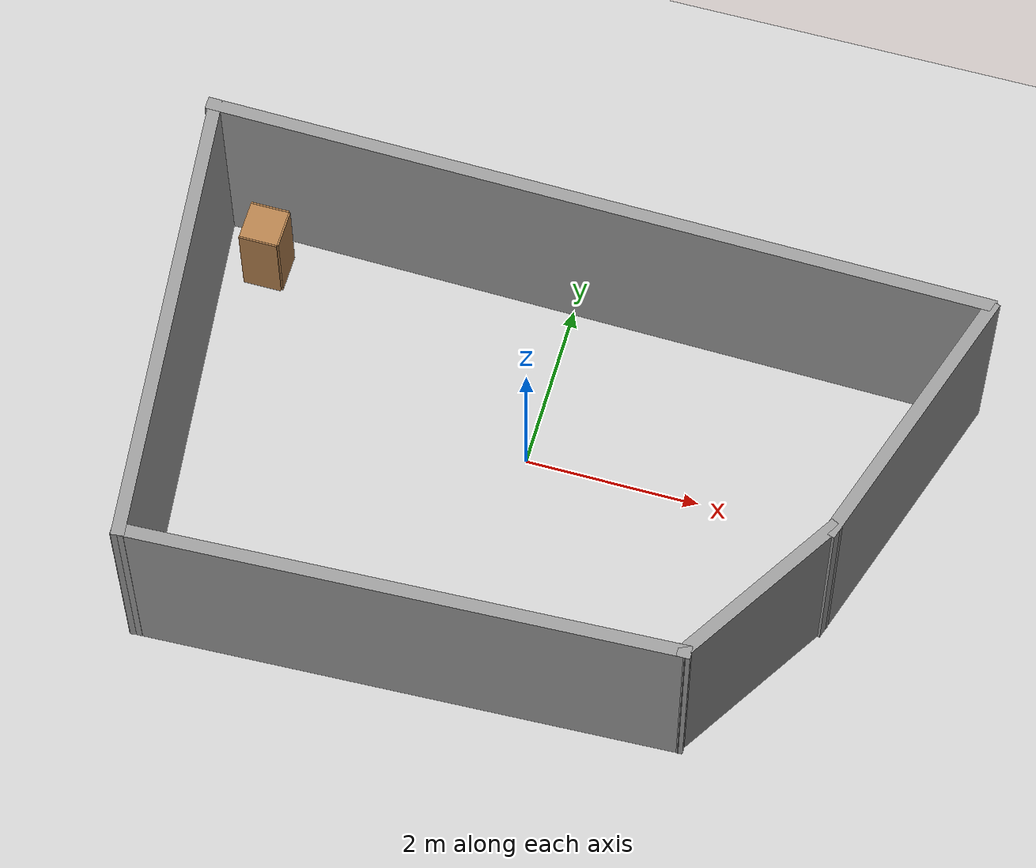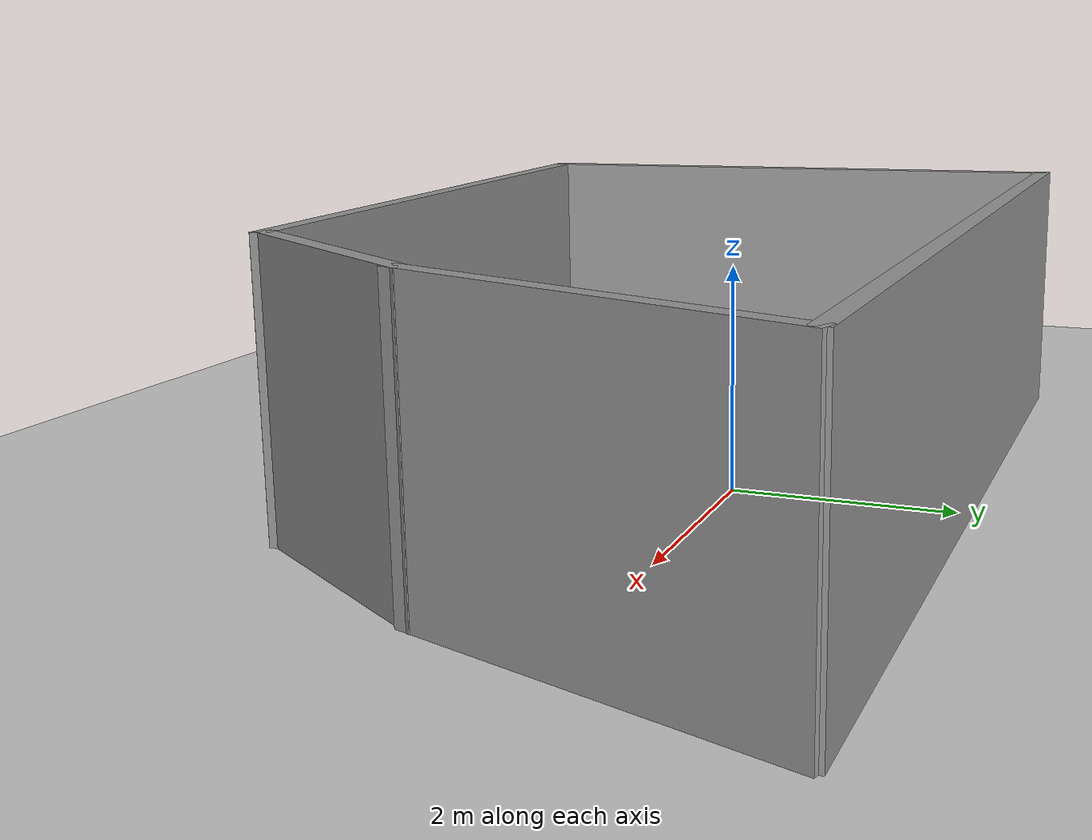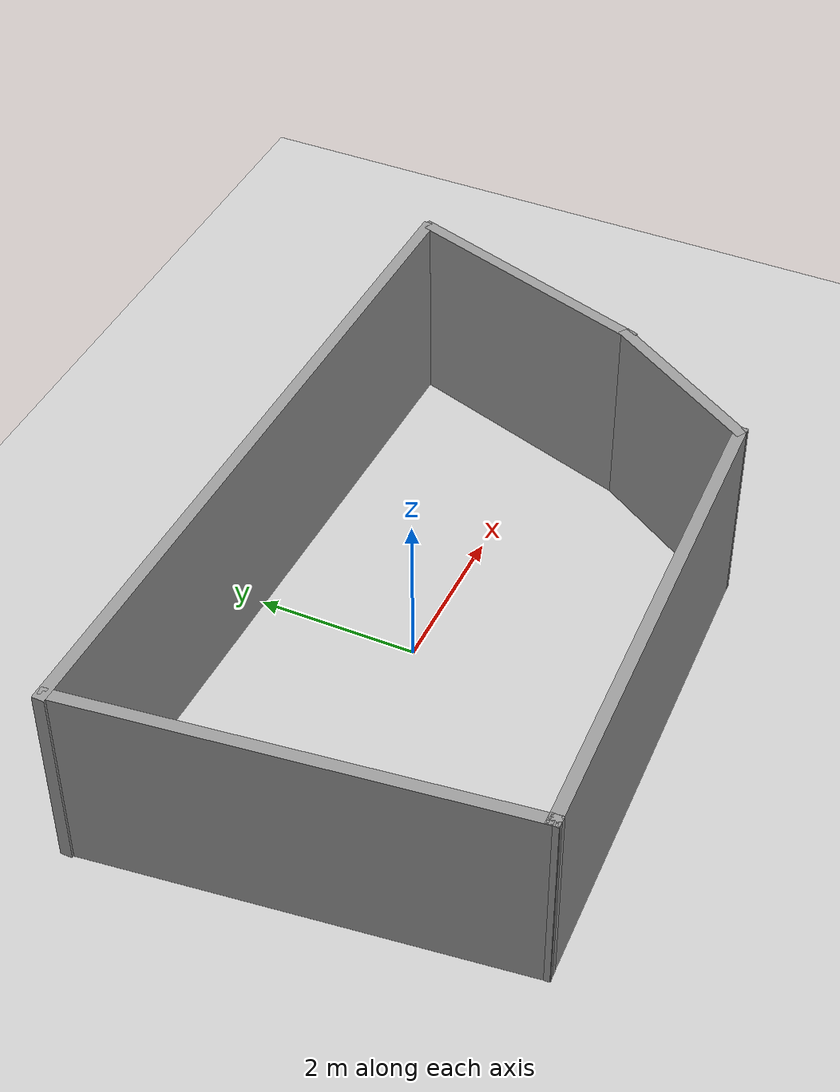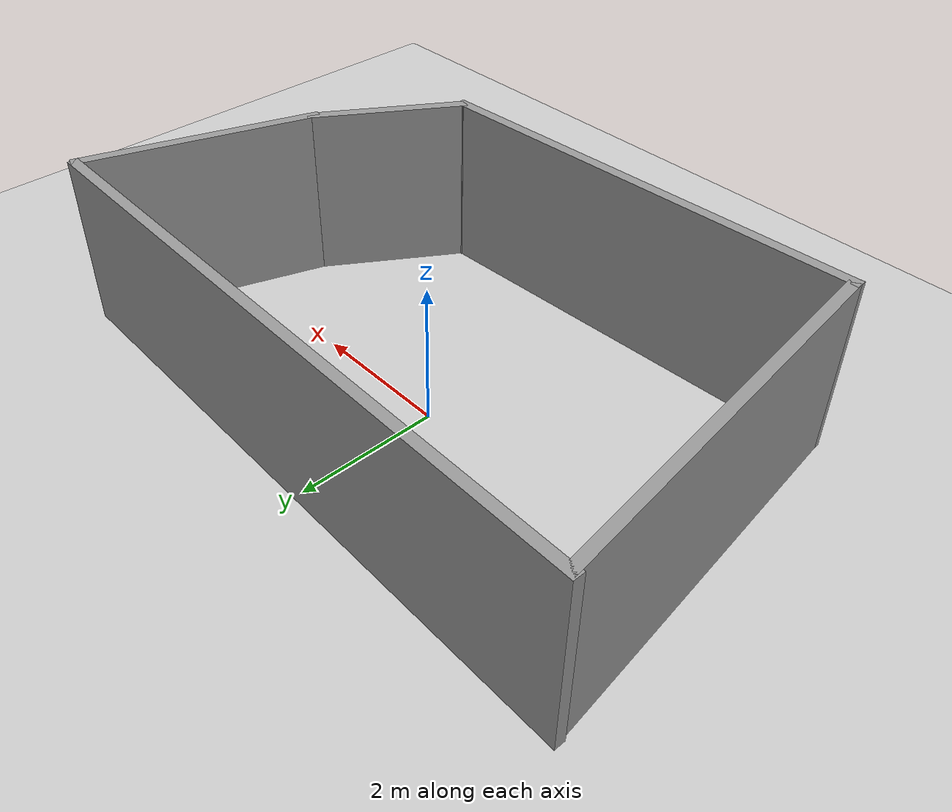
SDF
<sdf version="1.6">
 <world name="default">
  <light name="sun" type="directional">
   <pose>0 0 15 0 -0 0</pose>
   <diffuse>1 1 1 1</diffuse>
   <specular>0.1 0.1 0.1 1</specular>
   <attenuation>
    <range>1000</range>
    <constant>0.9</constant>
    <linear>0.01</linear>
    <quadratic>0.001</quadratic>
   </attenuation>
   <direction>-0.5 0.5 -1</direction>
  </light>
  <model name="ground_plane">
   <static>1</static>
   <link name="link">
    <collision name="collision">
     <geometry><plane><normal>0 0 1</normal><size>100 100</size></plane></geometry>
     <surface><friction><ode><mu>100</mu><mu2>50</mu2></ode></friction></surface>
    </collision>
    <visual name="visual">
     <transparency>1</transparency>
     <cast_shadows>0</cast_shadows>
     <geometry><plane><normal>0 0 1</normal><size>100 100</size></plane></geometry>
     <material>
      <script><uri>file://media/materials/scripts/gazebo.material</uri><name>Gazebo/Grey</name></script>
     </material>
    </visual>
   </link>
  </model>
  <gravity>0 0 -9.8</gravity>
  <magnetic_field>6e-06 2.3e-05 -4.2e-05</magnetic_field>
  <atmosphere type="adiabatic"/>
  <physics name="default_physics" default="0" type="ode">
   <max_step_size>0.001</max_step_size>
   <real_time_factor>1</real_time_factor>
   <real_time_update_rate>1000</real_time_update_rate>
  </physics>
  <scene><ambient>0.4 0.4 0.4 1</ambient><background>0.7 0.7 0.7 1</background><shadows>1</shadows></scene>
  <spherical_coordinates>
   <surface_model>EARTH_WGS84</surface_model>
   <latitude_deg>0</latitude_deg>
   <longitude_deg>0</longitude_deg>
   <elevation>0</elevation>
   <heading_deg>0</heading_deg>
  </spherical_coordinates>
  <model name="Untitled">
   <pose>0.236951 -0.530748 0 0 -0 0</pose>
   <link name="Wall_0">
    <collision name="Wall_0_Collision">
     <geometry><box><size>9.04138 0.15 2.5</size></box></geometry>
     <pose>0 0 1.25 0 -0 0</pose>
    </collision>
    <visual name="Wall_0_Visual">
     <pose>0 0 1.25 0 -0 0</pose>
     <geometry><box><size>9.04138 0.15 2.5</size></box></geometry>
     <material>
      <script><uri>file://media/materials/scripts/gazebo.material</uri><name>Gazebo/Grey</name></script>
      <ambient>1 1 1 1</ambient>
     </material>
    </visual>
    <pose>-0.020786 2.57564 0 0 0 -0.017203</pose>
   </link>
   <link name="Wall_1">
    <collision name="Wall_1_Collision">
     <geometry><box><size>3.3931 0.15 2.5</size></box></geometry>
     <pose>0 0 1.25 0 -0 0</pose>
    </collision>
    <visual name="Wall_1_Visual">
     <pose>0 0 1.25 0 -0 0</pose>
     <geometry><box><size>3.3931 0.15 2.5</size></box></geometry>
     <material>
      <script><uri>file://media/materials/scripts/gazebo.material</uri><name>Gazebo/Grey</name></script>
      <ambient>1 1 1 1</ambient>
     </material>
    </visual>
    <pose>3.93937 0.93611 0 0 0 -1.88945</pose>
   </link>
   <link name="Wall_2">
    <collision name="Wall_2_Collision">
     <geometry><box><size>2.2651 0.15 2.5</size></box></geometry>
     <pose>0 0 1.25 0 -0 0</pose>
    </collision>
    <visual name="Wall_2_Visual">
     <pose>0 0 1.25 0 -0 0</pose>
     <geometry><box><size>2.2651 0.15 2.5</size></box></geometry>
     <material>
      <script><uri>file://media/materials/scripts/gazebo.material</uri><name>Gazebo/Grey</name></script>
      <ambient>1 1 1 1</ambient>
     </material>
    </visual>
    <pose>2.86544 -1.47407 0 0 0 -2.13545</pose>
   </link>
   <link name="Wall_3">
    <collision name="Wall_3_Collision">
     <geometry><box><size>0.15 0.15 2.5</size></box></geometry>
     <pose>0 0 1.25 0 -0 0</pose>
    </collision>
    <visual name="Wall_3_Visual">
     <pose>0 0 1.25 0 -0 0</pose>
     <geometry><box><size>0.15 0.15 2.5</size></box></geometry>
     <material>
      <script><uri>file://media/materials/scripts/gazebo.material</uri><name>Gazebo/Grey</name></script>
      <ambient>1 1 1 1</ambient>
     </material>
    </visual>
    <pose>2.29952 -2.39059 0 0 -0 0</pose>
   </link>
   <link name="Wall_4">
    <collision name="Wall_4_Collision">
     <geometry><box><size>6.26748 0.15 2.5</size></box></geometry>
     <pose>0 0 1.25 0 -0 0</pose>
    </collision>
    <visual name="Wall_4_Visual">
     <pose>0 0 1.25 0 -0 0</pose>
     <geometry><box><size>6.26748 0.15 2.5</size></box></geometry>
     <material>
      <script><uri>file://media/materials/scripts/gazebo.material</uri><name>Gazebo/Grey</name></script>
      <ambient>1 1 1 1</ambient>
     </material>
    </visual>
    <pose>-0.756567 -2.51781 0 0 0 -3.09999</pose>
   </link>
   <link name="Wall_5">
    <collision name="Wall_5_Collision">
     <geometry><box><size>0.15 0.15 2.5</size></box></geometry>
     <pose>0 0 1.25 0 -0 0</pose>
    </collision>
    <visual name="Wall_5_Visual">
     <pose>0 0 1.25 0 -0 0</pose>
     <geometry><box><size>0.15 0.15 2.5</size></box></geometry>
     <material>
      <script><uri>file://media/materials/scripts/gazebo.material</uri><name>Gazebo/Grey</name></script>
      <ambient>1 1 1 1</ambient>
     </material>
    </visual>
    <pose>-3.81266 -2.64502 0 0 -0 0</pose>
   </link>
   <link name="Wall_6">
    <collision name="Wall_6_Collision">
     <geometry><box><size>5.4615 0.15 2.5</size></box></geometry>
     <pose>0 0 1.25 0 -0 0</pose>
    </collision>
    <visual name="Wall_6_Visual">
     <pose>0 0 1.25 0 -0 0</pose>
     <geometry><box><size>5.4615 0.15 2.5</size></box></geometry>
     <material>
      <script><uri>file://media/materials/scripts/gazebo.material</uri><name>Gazebo/Grey</name></script>
      <ambient>1 1 1 1</ambient>
     </material>
    </visual>
    <pose>-4.12767 -0.008021 0 0 -0 1.68969</pose>
   </link>
   <static>1</static>
  </model>
  <model name="cabinet">
   <static>1</static>
   <link name="cabinet_bottom_plate">
    <inertial>
     <pose>0 0 -1 0 -0 0</pose>
     <inertia><ixx>2.05</ixx><ixy>0</ixy><ixz>0</ixz><iyy>2.05</iyy><iyz>0</iyz><izz>2.05</izz></inertia>
     <mass>25</mass>
    </inertial>
    <collision name="cabinet_bottom_plate_geom">
     <pose>0 0 0.01 0 -0 0</pose>
     <geometry><box><size>0.45 0.45 0.02</size></box></geometry>
    </collision>
    <visual name="cabinet_bottom_plate_geom_visual">
     <pose>0 0 0.01 0 -0 0</pose>
     <geometry><box><size>0.45 0.45 0.02</size></box></geometry>
     <material>
      <script><uri>file://media/materials/scripts/gazebo.material</uri><name>Gazebo/Wood</name></script>
     </material>
    </visual>
    <collision name="cabinet_bottom_plate_geom_cabinet_back_plate">
     <pose>0.235 0 0.51 0 -0 0</pose>
     <geometry><box><size>0.02 0.45 1.02</size></box></geometry>
    </collision>
    <visual name="cabinet_bottom_plate_geom_cabinet_back_plate_visual">
     <pose>0.235 0 0.51 0 -0 0</pose>
     <geometry><box><size>0.02 0.45 1.02</size></box></geometry>
     <material>
      <script><uri>file://media/materials/scripts/gazebo.material</uri><name>Gazebo/Wood</name></script>
     </material>
    </visual>
    <collision name="cabinet_bottom_plate_geom_cabinet_left_plate">
     <pose>0 0.235 0.51 0 -0 0</pose>
     <geometry><box><size>0.45 0.02 1.02</size></box></geometry>
    </collision>
    <visual name="cabinet_bottom_plate_geom_cabinet_left_plate_visual">
     <pose>0 0.235 0.51 0 -0 0</pose>
     <geometry><box><size>0.45 0.02 1.02</size></box></geometry>
     <material>
      <script><uri>file://media/materials/scripts/gazebo.material</uri><name>Gazebo/Wood</name></script>
     </material>
    </visual>
    <collision name="cabinet_bottom_plate_geom_cabinet_middle_plate">
     <pose>0 0 0.51 0 -0 0</pose>
     <geometry><box><size>0.45 0.45 0.02</size></box></geometry>
    </collision>
    <visual name="cabinet_bottom_plate_geom_cabinet_middle_plate_visual">
     <pose>0 0 0.51 0 -0 0</pose>
     <geometry><box><size>0.45 0.45 0.02</size></box></geometry>
     <material>
      <script><uri>file://media/materials/scripts/gazebo.material</uri><name>Gazebo/Wood</name></script>
     </material>
    </visual>
    <collision name="cabinet_bottom_plate_geom_cabinet_right_plate">
     <pose>0 -0.235 0.51 0 -0 0</pose>
     <geometry><box><size>0.45 0.02 1.02</size></box></geometry>
    </collision>
    <visual name="cabinet_bottom_plate_geom_cabinet_right_plate_visual">
     <pose>0 -0.235 0.51 0 -0 0</pose>
     <geometry><box><size>0.45 0.02 1.02</size></box></geometry>
     <material>
      <script><uri>file://media/materials/scripts/gazebo.material</uri><name>Gazebo/Wood</name></script>
     </material>
    </visual>
    <collision name="cabinet_bottom_plate_geom_cabinet_top_plate">
     <pose>0 0 1.01 0 -0 0</pose>
     <geometry><box><size>0.45 0.45 0.02</size></box></geometry>
    </collision>
    <visual name="cabinet_bottom_plate_geom_cabinet_top_plate_visual">
     <pose>0 0 1.01 0 -0 0</pose>
     <geometry><box><size>0.45 0.45 0.02</size></box></geometry>
     <material>
      <script><uri>file://media/materials/scripts/gazebo.material</uri><name>Gazebo/Wood</name></script>
     </material>
    </visual>
   </link>
   <pose>-3.56292 1.60072 0 0 -0 0</pose>
  </model>
 </world>
</sdf>
